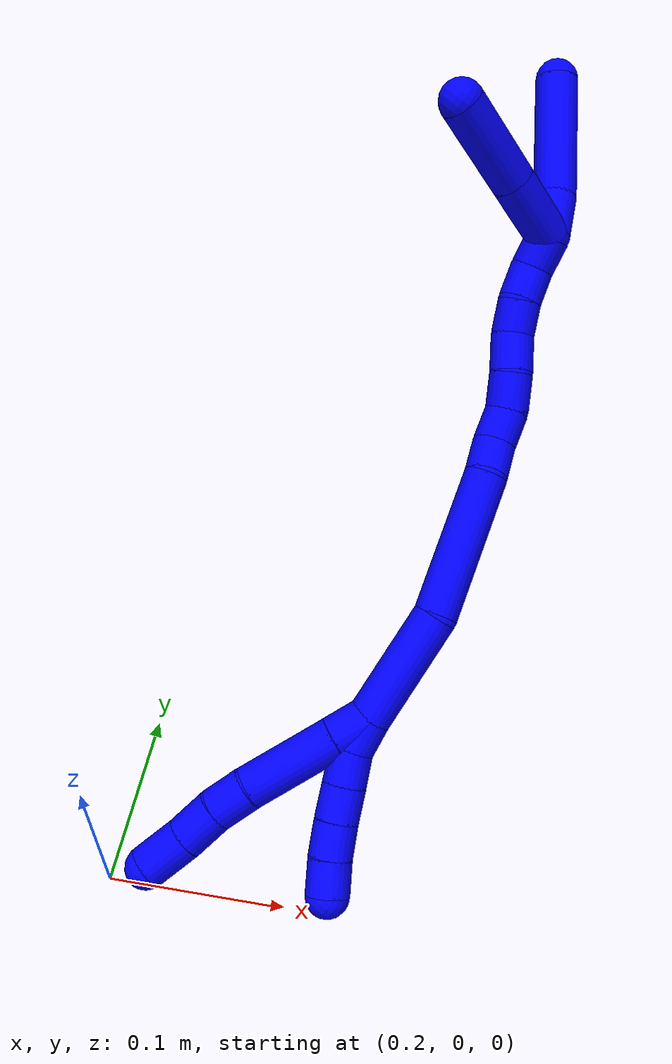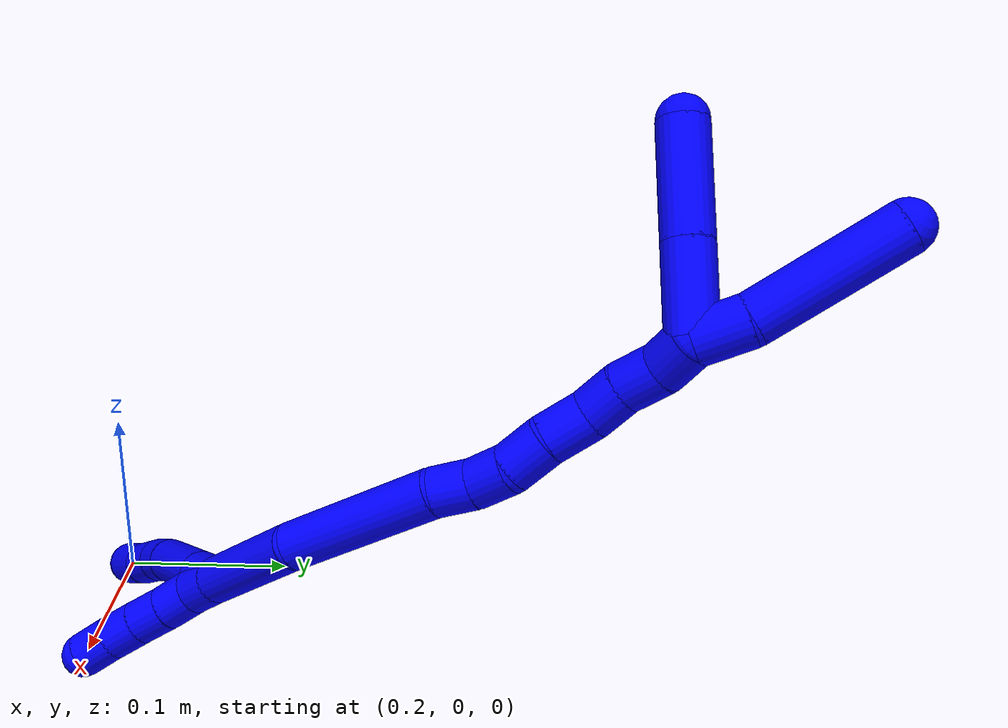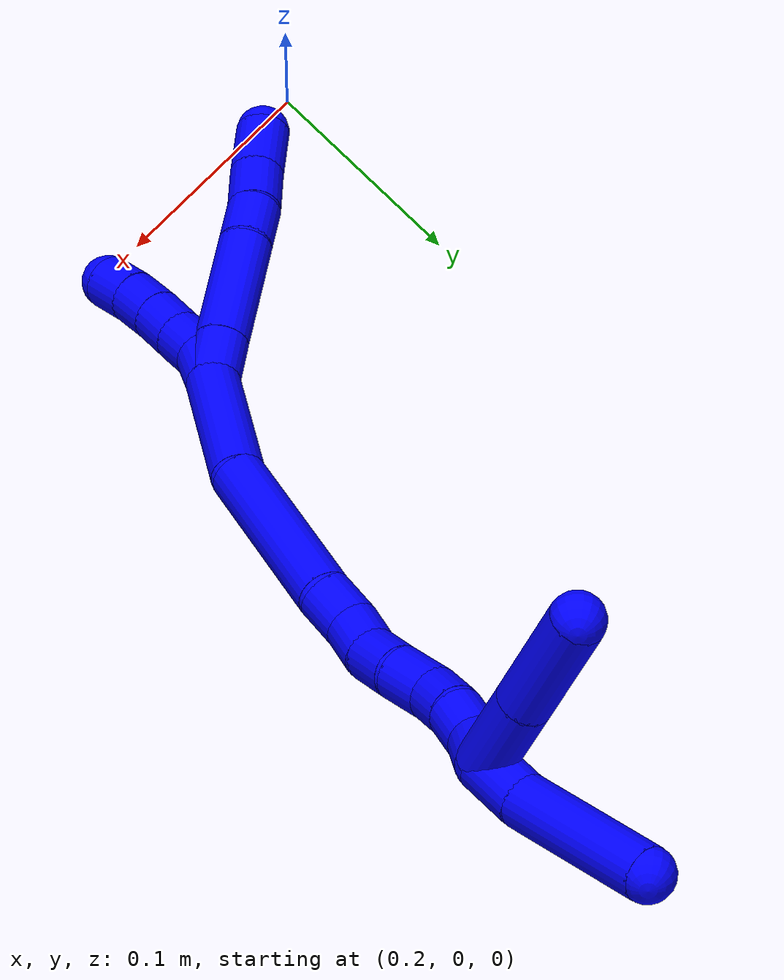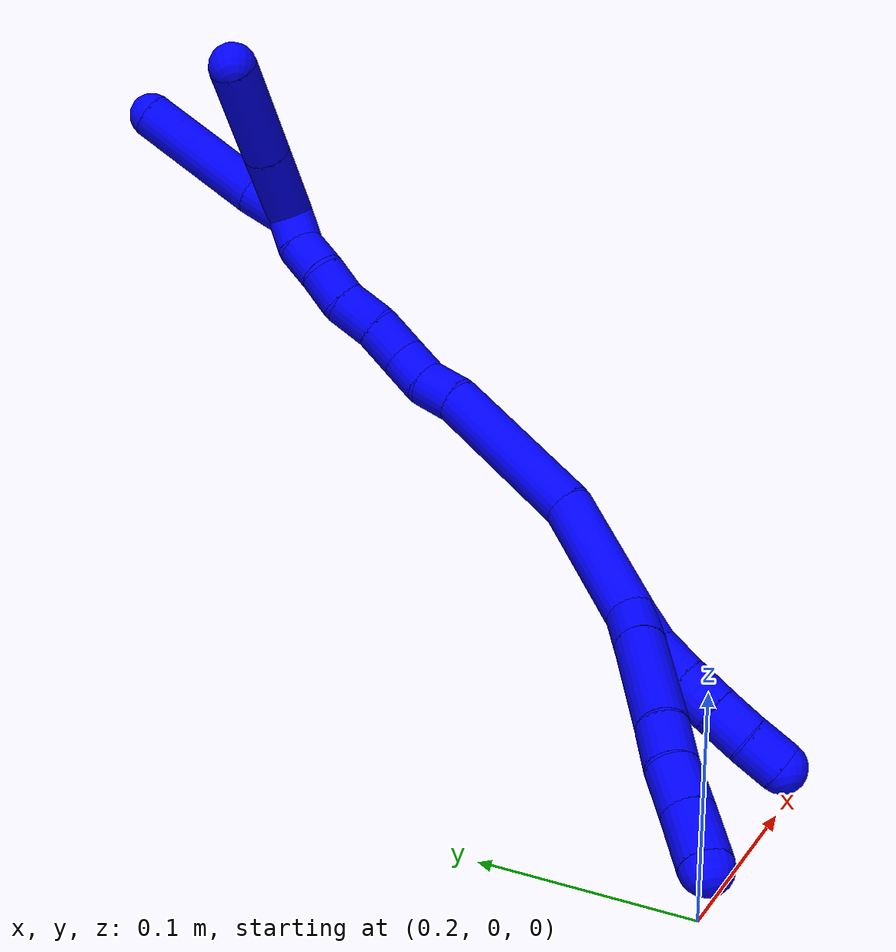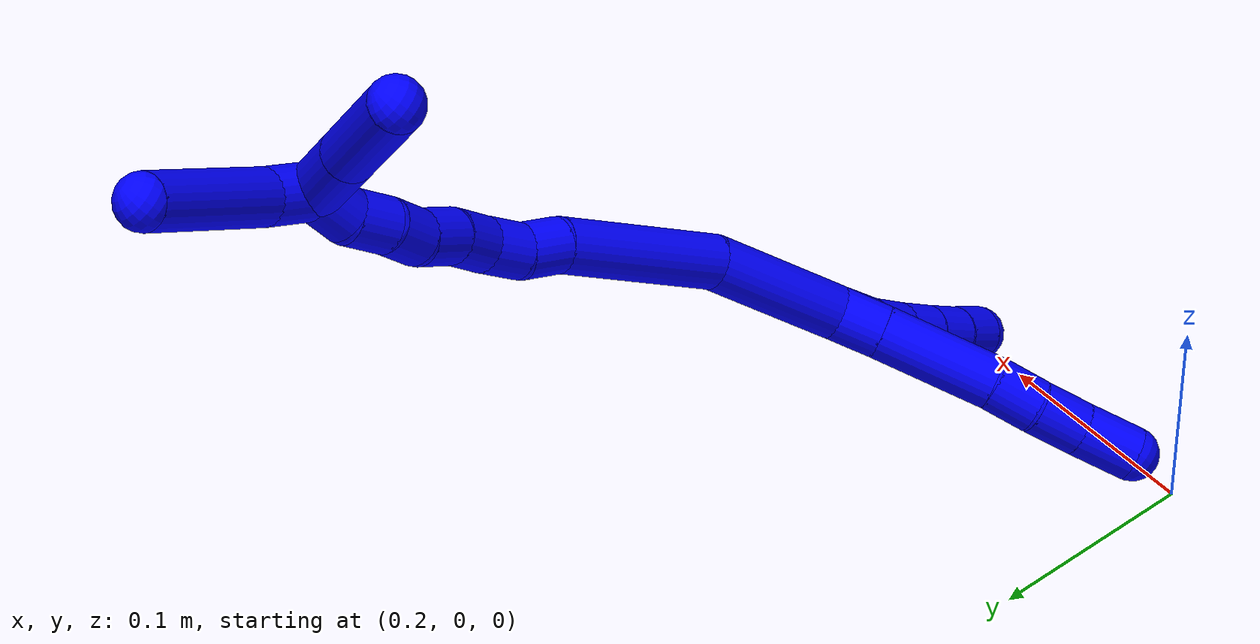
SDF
<sdf version="1.7">
 <world name="default">
  <model name="1">
   <static>0</static>
   <link name="1">
    <collision name="collision-cylinder-e_1_2_8">
     <pose>-0.005213 -0.000842 -0.009881 3.05662 -0.48401 -2.8005</pose>
     <geometry><cylinder><radius>0.0125</radius><length>0.022407</length></cylinder></geometry>
     <surface>
      <friction><ode><mu>1.16</mu><mu2>1.16</mu2><slip1>0</slip1><slip2>0</slip2></ode></friction>
      <contact><ode><kp>1e+06</kp><kd>1</kd><max_vel>0</max_vel><min_depth>0.001</min_depth></ode></contact>
     </surface>
    </collision>
    <visual name="visual-cylinder-e_1_2_8">
     <pose>-0.005213 -0.000842 -0.009881 3.05662 -0.48401 -2.8005</pose>
     <geometry><cylinder><radius>0.0125</radius><length>0.022407</length></cylinder></geometry>
     <material><ambient>0 0 1 1</ambient></material>
    </visual>
    <collision name="collision-cylinder-e_2_8_9">
     <pose>-0.02298 -0.003148 -0.044128 3.08154 -0.474985 -2.8947</pose>
     <geometry><cylinder><radius>0.0125</radius><length>0.054897</length></cylinder></geometry>
     <surface>
      <friction><ode><mu>1.16</mu><mu2>1.16</mu2><slip1>0</slip1><slip2>0</slip2></ode></friction>
      <contact><ode><kp>1e+06</kp><kd>1</kd><max_vel>0</max_vel><min_depth>0.001</min_depth></ode></contact>
     </surface>
    </collision>
    <visual name="visual-cylinder-e_2_8_9">
     <pose>-0.02298 -0.003148 -0.044128 3.08154 -0.474985 -2.8947</pose>
     <geometry><cylinder><radius>0.0125</radius><length>0.054897</length></cylinder></geometry>
     <material><ambient>0 0 1 1</ambient></material>
    </visual>
    <collision name="collision-cylinder-e_3_9_10">
     <pose>-0.039474 -0.004809 -0.07886 3.12269 -0.363309 -3.03876</pose>
     <geometry><cylinder><radius>0.0125</radius><length>0.022184</length></cylinder></geometry>
     <surface>
      <friction><ode><mu>1.16</mu><mu2>1.16</mu2><slip1>0</slip1><slip2>0</slip2></ode></friction>
      <contact><ode><kp>1e+06</kp><kd>1</kd><max_vel>0</max_vel><min_depth>0.001</min_depth></ode></contact>
     </surface>
    </collision>
    <visual name="visual-cylinder-e_3_9_10">
     <pose>-0.039474 -0.004809 -0.07886 3.12269 -0.363309 -3.03876</pose>
     <geometry><cylinder><radius>0.0125</radius><length>0.022184</length></cylinder></geometry>
     <material><ambient>0 0 1 1</ambient></material>
    </visual>
    <collision name="collision-cylinder-e_4_10_11">
     <pose>-0.046265 -0.006185 -0.100529 3.03763 -0.245665 -2.34387</pose>
     <geometry><cylinder><radius>0.0125</radius><length>0.023432</length></cylinder></geometry>
     <surface>
      <friction><ode><mu>1.16</mu><mu2>1.16</mu2><slip1>0</slip1><slip2>0</slip2></ode></friction>
      <contact><ode><kp>1e+06</kp><kd>1</kd><max_vel>0</max_vel><min_depth>0.001</min_depth></ode></contact>
     </surface>
    </collision>
    <visual name="visual-cylinder-e_4_10_11">
     <pose>-0.046265 -0.006185 -0.100529 3.03763 -0.245665 -2.34387</pose>
     <geometry><cylinder><radius>0.0125</radius><length>0.023432</length></cylinder></geometry>
     <material><ambient>0 0 1 1</ambient></material>
    </visual>
    <collision name="collision-cylinder-e_5_11_6">
     <pose>-0.053592 -0.008593 -0.124551 3.04527 -0.336987 -2.58936</pose>
     <geometry><cylinder><radius>0.0125</radius><length>0.027079</length></cylinder></geometry>
     <surface>
      <friction><ode><mu>1.16</mu><mu2>1.16</mu2><slip1>0</slip1><slip2>0</slip2></ode></friction>
      <contact><ode><kp>1e+06</kp><kd>1</kd><max_vel>0</max_vel><min_depth>0.001</min_depth></ode></contact>
     </surface>
    </collision>
    <visual name="visual-cylinder-e_5_11_6">
     <pose>-0.053592 -0.008593 -0.124551 3.04527 -0.336987 -2.58936</pose>
     <geometry><cylinder><radius>0.0125</radius><length>0.027079</length></cylinder></geometry>
     <material><ambient>0 0 1 1</ambient></material>
    </visual>
    <collision name="collision-cylinder-e_1_2_12">
     <pose>0.000221 -0.002928 -0.009559 2.84435 0.022059 0.147069</pose>
     <geometry><cylinder><radius>0.0125</radius><length>0.02</length></cylinder></geometry>
     <surface>
      <friction><ode><mu>1.16</mu><mu2>1.16</mu2><slip1>0</slip1><slip2>0</slip2></ode></friction>
      <contact><ode><kp>1e+06</kp><kd>1</kd><max_vel>0</max_vel><min_depth>0.001</min_depth></ode></contact>
     </surface>
    </collision>
    <visual name="visual-cylinder-e_1_2_12">
     <pose>0.000221 -0.002928 -0.009559 2.84435 0.022059 0.147069</pose>
     <geometry><cylinder><radius>0.0125</radius><length>0.02</length></cylinder></geometry>
     <material><ambient>0 0 1 1</ambient></material>
    </visual>
    <collision name="collision-cylinder-e_2_12_13">
     <pose>0.002879 -0.010596 -0.02758 2.63101 0.246294 0.885682</pose>
     <geometry><cylinder><radius>0.0125</radius><length>0.02</length></cylinder></geometry>
     <surface>
      <friction><ode><mu>1.16</mu><mu2>1.16</mu2><slip1>0</slip1><slip2>0</slip2></ode></friction>
      <contact><ode><kp>1e+06</kp><kd>1</kd><max_vel>0</max_vel><min_depth>0.001</min_depth></ode></contact>
     </surface>
    </collision>
    <visual name="visual-cylinder-e_2_12_13">
     <pose>0.002879 -0.010596 -0.02758 2.63101 0.246294 0.885682</pose>
     <geometry><cylinder><radius>0.0125</radius><length>0.02</length></cylinder></geometry>
     <material><ambient>0 0 1 1</ambient></material>
    </visual>
    <collision name="collision-cylinder-e_3_13_14">
     <pose>0.007412 -0.020397 -0.044407 2.59742 0.211054 0.725651</pose>
     <geometry><cylinder><radius>0.0125</radius><length>0.02</length></cylinder></geometry>
     <surface>
      <friction><ode><mu>1.16</mu><mu2>1.16</mu2><slip1>0</slip1><slip2>0</slip2></ode></friction>
      <contact><ode><kp>1e+06</kp><kd>1</kd><max_vel>0</max_vel><min_depth>0.001</min_depth></ode></contact>
     </surface>
    </collision>
    <visual name="visual-cylinder-e_3_13_14">
     <pose>0.007412 -0.020397 -0.044407 2.59742 0.211054 0.725651</pose>
     <geometry><cylinder><radius>0.0125</radius><length>0.02</length></cylinder></geometry>
     <material><ambient>0 0 1 1</ambient></material>
    </visual>
    <collision name="collision-cylinder-e_4_14_15">
     <pose>0.012019 -0.030718 -0.060899 2.56722 0.253899 0.815828</pose>
     <geometry><cylinder><radius>0.0125</radius><length>0.02</length></cylinder></geometry>
     <surface>
      <friction><ode><mu>1.16</mu><mu2>1.16</mu2><slip1>0</slip1><slip2>0</slip2></ode></friction>
      <contact><ode><kp>1e+06</kp><kd>1</kd><max_vel>0</max_vel><min_depth>0.001</min_depth></ode></contact>
     </surface>
    </collision>
    <visual name="visual-cylinder-e_4_14_15">
     <pose>0.012019 -0.030718 -0.060899 2.56722 0.253899 0.815828</pose>
     <geometry><cylinder><radius>0.0125</radius><length>0.02</length></cylinder></geometry>
     <material><ambient>0 0 1 1</ambient></material>
    </visual>
    <collision name="collision-cylinder-e_5_15_5">
     <pose>0.017807 -0.041547 -0.076657 2.51114 0.333795 0.95368</pose>
     <geometry><cylinder><radius>0.0125</radius><length>0.02</length></cylinder></geometry>
     <surface>
      <friction><ode><mu>1.16</mu><mu2>1.16</mu2><slip1>0</slip1><slip2>0</slip2></ode></friction>
      <contact><ode><kp>1e+06</kp><kd>1</kd><max_vel>0</max_vel><min_depth>0.001</min_depth></ode></contact>
     </surface>
    </collision>
    <visual name="visual-cylinder-e_5_15_5">
     <pose>0.017807 -0.041547 -0.076657 2.51114 0.333795 0.95368</pose>
     <geometry><cylinder><radius>0.0125</radius><length>0.02</length></cylinder></geometry>
     <material><ambient>0 0 1 1</ambient></material>
    </visual>
    <collision name="collision-cylinder-e_1_2_16">
     <pose>0.001345 0.008474 0.03283 -0.252589 0.039649 -0.005035</pose>
     <geometry><cylinder><radius>0.0125</radius><length>0.067866</length></cylinder></geometry>
     <surface>
      <friction><ode><mu>1.16</mu><mu2>1.16</mu2><slip1>0</slip1><slip2>0</slip2></ode></friction>
      <contact><ode><kp>1e+06</kp><kd>1</kd><max_vel>0</max_vel><min_depth>0.001</min_depth></ode></contact>
     </surface>
    </collision>
    <visual name="visual-cylinder-e_1_2_16">
     <pose>0.001345 0.008474 0.03283 -0.252589 0.039649 -0.005035</pose>
     <geometry><cylinder><radius>0.0125</radius><length>0.067866</length></cylinder></geometry>
     <material><ambient>0 0 1 1</ambient></material>
    </visual>
    <collision name="collision-cylinder-e_2_16_17">
     <pose>-0.000126 0.037956 0.10259 -0.517245 -0.066179 0.017514</pose>
     <geometry><cylinder><radius>0.0125</radius><length>0.085161</length></cylinder></geometry>
     <surface>
      <friction><ode><mu>1.16</mu><mu2>1.16</mu2><slip1>0</slip1><slip2>0</slip2></ode></friction>
      <contact><ode><kp>1e+06</kp><kd>1</kd><max_vel>0</max_vel><min_depth>0.001</min_depth></ode></contact>
     </surface>
    </collision>
    <visual name="visual-cylinder-e_2_16_17">
     <pose>-0.000126 0.037956 0.10259 -0.517245 -0.066179 0.017514</pose>
     <geometry><cylinder><radius>0.0125</radius><length>0.085161</length></cylinder></geometry>
     <material><ambient>0 0 1 1</ambient></material>
    </visual>
    <collision name="collision-cylinder-e_3_17_18">
     <pose>-0.003155 0.065883 0.147116 -0.73862 -0.020778 0.008043</pose>
     <geometry><cylinder><radius>0.0125</radius><length>0.020553</length></cylinder></geometry>
     <surface>
      <friction><ode><mu>1.16</mu><mu2>1.16</mu2><slip1>0</slip1><slip2>0</slip2></ode></friction>
      <contact><ode><kp>1e+06</kp><kd>1</kd><max_vel>0</max_vel><min_depth>0.001</min_depth></ode></contact>
     </surface>
    </collision>
    <visual name="visual-cylinder-e_3_17_18">
     <pose>-0.003155 0.065883 0.147116 -0.73862 -0.020778 0.008043</pose>
     <geometry><cylinder><radius>0.0125</radius><length>0.020553</length></cylinder></geometry>
     <material><ambient>0 0 1 1</ambient></material>
    </visual>
    <collision name="collision-cylinder-e_4_18_19">
     <pose>-0.004203 0.077256 0.163874 -0.452665 -0.08175 0.018835</pose>
     <geometry><cylinder><radius>0.0125</radius><length>0.020442</length></cylinder></geometry>
     <surface>
      <friction><ode><mu>1.16</mu><mu2>1.16</mu2><slip1>0</slip1><slip2>0</slip2></ode></friction>
      <contact><ode><kp>1e+06</kp><kd>1</kd><max_vel>0</max_vel><min_depth>0.001</min_depth></ode></contact>
     </surface>
    </collision>
    <visual name="visual-cylinder-e_4_18_19">
     <pose>-0.004203 0.077256 0.163874 -0.452665 -0.08175 0.018835</pose>
     <geometry><cylinder><radius>0.0125</radius><length>0.020442</length></cylinder></geometry>
     <material><ambient>0 0 1 1</ambient></material>
    </visual>
    <collision name="collision-cylinder-e_5_19_20">
     <pose>-0.009028 0.086333 0.182195 -0.467219 -0.370908 0.089226</pose>
     <geometry><cylinder><radius>0.0125</radius><length>0.022017</length></cylinder></geometry>
     <surface>
      <friction><ode><mu>1.16</mu><mu2>1.16</mu2><slip1>0</slip1><slip2>0</slip2></ode></friction>
      <contact><ode><kp>1e+06</kp><kd>1</kd><max_vel>0</max_vel><min_depth>0.001</min_depth></ode></contact>
     </surface>
    </collision>
    <visual name="visual-cylinder-e_5_19_20">
     <pose>-0.009028 0.086333 0.182195 -0.467219 -0.370908 0.089226</pose>
     <geometry><cylinder><radius>0.0125</radius><length>0.022017</length></cylinder></geometry>
     <material><ambient>0 0 1 1</ambient></material>
    </visual>
    <collision name="collision-cylinder-e_6_20_21">
     <pose>-0.016778 0.097583 0.199892 -0.660268 -0.334773 0.115673</pose>
     <geometry><cylinder><radius>0.0125</radius><length>0.022887</length></cylinder></geometry>
     <surface>
      <friction><ode><mu>1.16</mu><mu2>1.16</mu2><slip1>0</slip1><slip2>0</slip2></ode></friction>
      <contact><ode><kp>1e+06</kp><kd>1</kd><max_vel>0</max_vel><min_depth>0.001</min_depth></ode></contact>
     </surface>
    </collision>
    <visual name="visual-cylinder-e_6_20_21">
     <pose>-0.016778 0.097583 0.199892 -0.660268 -0.334773 0.115673</pose>
     <geometry><cylinder><radius>0.0125</radius><length>0.022887</length></cylinder></geometry>
     <material><ambient>0 0 1 1</ambient></material>
    </visual>
    <collision name="collision-cylinder-e_7_21_22">
     <pose>-0.02377 0.107622 0.217299 -0.367027 -0.327789 0.06137</pose>
     <geometry><cylinder><radius>0.0125</radius><length>0.020076</length></cylinder></geometry>
     <surface>
      <friction><ode><mu>1.16</mu><mu2>1.16</mu2><slip1>0</slip1><slip2>0</slip2></ode></friction>
      <contact><ode><kp>1e+06</kp><kd>1</kd><max_vel>0</max_vel><min_depth>0.001</min_depth></ode></contact>
     </surface>
    </collision>
    <visual name="visual-cylinder-e_7_21_22">
     <pose>-0.02377 0.107622 0.217299 -0.367027 -0.327789 0.06137</pose>
     <geometry><cylinder><radius>0.0125</radius><length>0.020076</length></cylinder></geometry>
     <material><ambient>0 0 1 1</ambient></material>
    </visual>
    <collision name="collision-cylinder-e_8_22_23">
     <pose>-0.028175 0.115239 0.235513 -0.423088 -0.11405 0.024518</pose>
     <geometry><cylinder><radius>0.0125</radius><length>0.020626</length></cylinder></geometry>
     <surface>
      <friction><ode><mu>1.16</mu><mu2>1.16</mu2><slip1>0</slip1><slip2>0</slip2></ode></friction>
      <contact><ode><kp>1e+06</kp><kd>1</kd><max_vel>0</max_vel><min_depth>0.001</min_depth></ode></contact>
     </surface>
    </collision>
    <visual name="visual-cylinder-e_8_22_23">
     <pose>-0.028175 0.115239 0.235513 -0.423088 -0.11405 0.024518</pose>
     <geometry><cylinder><radius>0.0125</radius><length>0.020626</length></cylinder></geometry>
     <material><ambient>0 0 1 1</ambient></material>
    </visual>
    <collision name="collision-cylinder-e_9_23_1">
     <pose>-0.031057 0.120282 0.254862 -0.083344 -0.16848 0.007042</pose>
     <geometry><cylinder><radius>0.0125</radius><length>0.020371</length></cylinder></geometry>
     <surface>
      <friction><ode><mu>1.16</mu><mu2>1.16</mu2><slip1>0</slip1><slip2>0</slip2></ode></friction>
      <contact><ode><kp>1e+06</kp><kd>1</kd><max_vel>0</max_vel><min_depth>0.001</min_depth></ode></contact>
     </surface>
    </collision>
    <visual name="visual-cylinder-e_9_23_1">
     <pose>-0.031057 0.120282 0.254862 -0.083344 -0.16848 0.007042</pose>
     <geometry><cylinder><radius>0.0125</radius><length>0.020371</length></cylinder></geometry>
     <material><ambient>0 0 1 1</ambient></material>
    </visual>
    <collision name="collision-cylinder-e_1_1_24">
     <pose>-0.034449 0.129574 0.274659 -0.712381 -0.129423 0.048211</pose>
     <geometry><cylinder><radius>0.0125</radius><length>0.026092</length></cylinder></geometry>
     <surface>
      <friction><ode><mu>1.16</mu><mu2>1.16</mu2><slip1>0</slip1><slip2>0</slip2></ode></friction>
      <contact><ode><kp>1e+06</kp><kd>1</kd><max_vel>0</max_vel><min_depth>0.001</min_depth></ode></contact>
     </surface>
    </collision>
    <visual name="visual-cylinder-e_1_1_24">
     <pose>-0.034449 0.129574 0.274659 -0.712381 -0.129423 0.048211</pose>
     <geometry><cylinder><radius>0.0125</radius><length>0.026092</length></cylinder></geometry>
     <material><ambient>0 0 1 1</ambient></material>
    </visual>
    <collision name="collision-cylinder-e_2_24_4">
     <pose>-0.048687 0.159548 0.311744 -0.667618 -0.346641 0.12128</pose>
     <geometry><cylinder><radius>0.0125</radius><length>0.073908</length></cylinder></geometry>
     <surface>
      <friction><ode><mu>1.16</mu><mu2>1.16</mu2><slip1>0</slip1><slip2>0</slip2></ode></friction>
      <contact><ode><kp>1e+06</kp><kd>1</kd><max_vel>0</max_vel><min_depth>0.001</min_depth></ode></contact>
     </surface>
    </collision>
    <visual name="visual-cylinder-e_2_24_4">
     <pose>-0.048687 0.159548 0.311744 -0.667618 -0.346641 0.12128</pose>
     <geometry><cylinder><radius>0.0125</radius><length>0.073908</length></cylinder></geometry>
     <material><ambient>0 0 1 1</ambient></material>
    </visual>
    <collision name="collision-cylinder-e_1_1_25">
     <pose>-0.053697 0.118833 0.271018 0.355718 -1.26712 -0.262575</pose>
     <geometry><cylinder><radius>0.0125</radius><length>0.043872</length></cylinder></geometry>
     <surface>
      <friction><ode><mu>1.16</mu><mu2>1.16</mu2><slip1>0</slip1><slip2>0</slip2></ode></friction>
      <contact><ode><kp>1e+06</kp><kd>1</kd><max_vel>0</max_vel><min_depth>0.001</min_depth></ode></contact>
     </surface>
    </collision>
    <visual name="visual-cylinder-e_1_1_25">
     <pose>-0.053697 0.118833 0.271018 0.355718 -1.26712 -0.262575</pose>
     <geometry><cylinder><radius>0.0125</radius><length>0.043872</length></cylinder></geometry>
     <material><ambient>0 0 1 1</ambient></material>
    </visual>
    <collision name="collision-cylinder-e_2_25_3">
     <pose>-0.10141 0.113601 0.285023 0.358916 -1.26714 -0.264965</pose>
     <geometry><cylinder><radius>0.0125</radius><length>0.056128</length></cylinder></geometry>
     <surface>
      <friction><ode><mu>1.16</mu><mu2>1.16</mu2><slip1>0</slip1><slip2>0</slip2></ode></friction>
      <contact><ode><kp>1e+06</kp><kd>1</kd><max_vel>0</max_vel><min_depth>0.001</min_depth></ode></contact>
     </surface>
    </collision>
    <visual name="visual-cylinder-e_2_25_3">
     <pose>-0.10141 0.113601 0.285023 0.358916 -1.26714 -0.264965</pose>
     <geometry><cylinder><radius>0.0125</radius><length>0.056128</length></cylinder></geometry>
     <material><ambient>0 0 1 1</ambient></material>
    </visual>
    <collision name="collision-sphere-3">
     <pose>-0.12819 0.110654 0.29288 0 -0 0</pose>
     <geometry><sphere><radius>0.0125</radius></sphere></geometry>
     <surface>
      <friction><ode><mu>1.16</mu><mu2>1.16</mu2><slip1>0</slip1><slip2>0</slip2></ode></friction>
      <contact><ode><kp>1e+06</kp><kd>1</kd><max_vel>0</max_vel><min_depth>0.001</min_depth></ode></contact>
     </surface>
    </collision>
    <visual name="visual-sphere-3">
     <pose>-0.12819 0.110654 0.29288 0 -0 0</pose>
     <geometry><sphere><radius>0.0125</radius></sphere></geometry>
     <material><ambient>0 0 1 1</ambient></material>
    </visual>
    <collision name="collision-sphere-25">
     <pose>-0.07463 0.116549 0.277167 0 -0 0</pose>
     <geometry><sphere><radius>0.0125</radius></sphere></geometry>
     <surface>
      <friction><ode><mu>1.16</mu><mu2>1.16</mu2><slip1>0</slip1><slip2>0</slip2></ode></friction>
      <contact><ode><kp>1e+06</kp><kd>1</kd><max_vel>0</max_vel><min_depth>0.001</min_depth></ode></contact>
     </surface>
    </collision>
    <visual name="visual-sphere-25">
     <pose>-0.07463 0.116549 0.277167 0 -0 0</pose>
     <geometry><sphere><radius>0.0125</radius></sphere></geometry>
     <material><ambient>0 0 1 1</ambient></material>
    </visual>
    <collision name="collision-sphere-4">
     <pose>-0.061242 0.181066 0.339038 0 -0 0</pose>
     <geometry><sphere><radius>0.0125</radius></sphere></geometry>
     <surface>
      <friction><ode><mu>1.16</mu><mu2>1.16</mu2><slip1>0</slip1><slip2>0</slip2></ode></friction>
      <contact><ode><kp>1e+06</kp><kd>1</kd><max_vel>0</max_vel><min_depth>0.001</min_depth></ode></contact>
     </surface>
    </collision>
    <visual name="visual-sphere-4">
     <pose>-0.061242 0.181066 0.339038 0 -0 0</pose>
     <geometry><sphere><radius>0.0125</radius></sphere></geometry>
     <material><ambient>0 0 1 1</ambient></material>
    </visual>
    <collision name="collision-sphere-24">
     <pose>-0.036132 0.13803 0.28445 0 -0 0</pose>
     <geometry><sphere><radius>0.0125</radius></sphere></geometry>
     <surface>
      <friction><ode><mu>1.16</mu><mu2>1.16</mu2><slip1>0</slip1><slip2>0</slip2></ode></friction>
      <contact><ode><kp>1e+06</kp><kd>1</kd><max_vel>0</max_vel><min_depth>0.001</min_depth></ode></contact>
     </surface>
    </collision>
    <visual name="visual-sphere-24">
     <pose>-0.036132 0.13803 0.28445 0 -0 0</pose>
     <geometry><sphere><radius>0.0125</radius></sphere></geometry>
     <material><ambient>0 0 1 1</ambient></material>
    </visual>
    <collision name="collision-sphere-1">
     <pose>-0.032765 0.121118 0.264869 0 -0 0</pose>
     <geometry><sphere><radius>0.0125</radius></sphere></geometry>
     <surface>
      <friction><ode><mu>1.16</mu><mu2>1.16</mu2><slip1>0</slip1><slip2>0</slip2></ode></friction>
      <contact><ode><kp>1e+06</kp><kd>1</kd><max_vel>0</max_vel><min_depth>0.001</min_depth></ode></contact>
     </surface>
    </collision>
    <visual name="visual-sphere-1">
     <pose>-0.032765 0.121118 0.264869 0 -0 0</pose>
     <geometry><sphere><radius>0.0125</radius></sphere></geometry>
     <material><ambient>0 0 1 1</ambient></material>
    </visual>
    <collision name="collision-sphere-23">
     <pose>-0.029349 0.119446 0.244855 0 -0 0</pose>
     <geometry><sphere><radius>0.0125</radius></sphere></geometry>
     <surface>
      <friction><ode><mu>1.16</mu><mu2>1.16</mu2><slip1>0</slip1><slip2>0</slip2></ode></friction>
      <contact><ode><kp>1e+06</kp><kd>1</kd><max_vel>0</max_vel><min_depth>0.001</min_depth></ode></contact>
     </surface>
    </collision>
    <visual name="visual-sphere-23">
     <pose>-0.029349 0.119446 0.244855 0 -0 0</pose>
     <geometry><sphere><radius>0.0125</radius></sphere></geometry>
     <material><ambient>0 0 1 1</ambient></material>
    </visual>
    <collision name="collision-sphere-22">
     <pose>-0.027001 0.111032 0.22617 0 -0 0</pose>
     <geometry><sphere><radius>0.0125</radius></sphere></geometry>
     <surface>
      <friction><ode><mu>1.16</mu><mu2>1.16</mu2><slip1>0</slip1><slip2>0</slip2></ode></friction>
      <contact><ode><kp>1e+06</kp><kd>1</kd><max_vel>0</max_vel><min_depth>0.001</min_depth></ode></contact>
     </surface>
    </collision>
    <visual name="visual-sphere-22">
     <pose>-0.027001 0.111032 0.22617 0 -0 0</pose>
     <geometry><sphere><radius>0.0125</radius></sphere></geometry>
     <material><ambient>0 0 1 1</ambient></material>
    </visual>
    <collision name="collision-sphere-21">
     <pose>-0.020538 0.104212 0.208429 0 -0 0</pose>
     <geometry><sphere><radius>0.0125</radius></sphere></geometry>
     <surface>
      <friction><ode><mu>1.16</mu><mu2>1.16</mu2><slip1>0</slip1><slip2>0</slip2></ode></friction>
      <contact><ode><kp>1e+06</kp><kd>1</kd><max_vel>0</max_vel><min_depth>0.001</min_depth></ode></contact>
     </surface>
    </collision>
    <visual name="visual-sphere-21">
     <pose>-0.020538 0.104212 0.208429 0 -0 0</pose>
     <geometry><sphere><radius>0.0125</radius></sphere></geometry>
     <material><ambient>0 0 1 1</ambient></material>
    </visual>
    <collision name="collision-sphere-6">
     <pose>-0.058069 -0.009822 -0.13727 0 -0 0</pose>
     <geometry><sphere><radius>0.0125</radius></sphere></geometry>
     <surface>
      <friction><ode><mu>1.16</mu><mu2>1.16</mu2><slip1>0</slip1><slip2>0</slip2></ode></friction>
      <contact><ode><kp>1e+06</kp><kd>1</kd><max_vel>0</max_vel><min_depth>0.001</min_depth></ode></contact>
     </surface>
    </collision>
    <visual name="visual-sphere-6">
     <pose>-0.058069 -0.009822 -0.13727 0 -0 0</pose>
     <geometry><sphere><radius>0.0125</radius></sphere></geometry>
     <material><ambient>0 0 1 1</ambient></material>
    </visual>
    <collision name="collision-sphere-11">
     <pose>-0.049115 -0.007364 -0.111832 0 -0 0</pose>
     <geometry><sphere><radius>0.0125</radius></sphere></geometry>
     <surface>
      <friction><ode><mu>1.16</mu><mu2>1.16</mu2><slip1>0</slip1><slip2>0</slip2></ode></friction>
      <contact><ode><kp>1e+06</kp><kd>1</kd><max_vel>0</max_vel><min_depth>0.001</min_depth></ode></contact>
     </surface>
    </collision>
    <visual name="visual-sphere-11">
     <pose>-0.049115 -0.007364 -0.111832 0 -0 0</pose>
     <geometry><sphere><radius>0.0125</radius></sphere></geometry>
     <material><ambient>0 0 1 1</ambient></material>
    </visual>
    <collision name="collision-sphere-10">
     <pose>-0.043416 -0.005005 -0.089226 0 -0 0</pose>
     <geometry><sphere><radius>0.0125</radius></sphere></geometry>
     <surface>
      <friction><ode><mu>1.16</mu><mu2>1.16</mu2><slip1>0</slip1><slip2>0</slip2></ode></friction>
      <contact><ode><kp>1e+06</kp><kd>1</kd><max_vel>0</max_vel><min_depth>0.001</min_depth></ode></contact>
     </surface>
    </collision>
    <visual name="visual-sphere-10">
     <pose>-0.043416 -0.005005 -0.089226 0 -0 0</pose>
     <geometry><sphere><radius>0.0125</radius></sphere></geometry>
     <material><ambient>0 0 1 1</ambient></material>
    </visual>
    <collision name="collision-sphere-9">
     <pose>-0.035533 -0.004613 -0.068494 0 -0 0</pose>
     <geometry><sphere><radius>0.0125</radius></sphere></geometry>
     <surface>
      <friction><ode><mu>1.16</mu><mu2>1.16</mu2><slip1>0</slip1><slip2>0</slip2></ode></friction>
      <contact><ode><kp>1e+06</kp><kd>1</kd><max_vel>0</max_vel><min_depth>0.001</min_depth></ode></contact>
     </surface>
    </collision>
    <visual name="visual-sphere-9">
     <pose>-0.035533 -0.004613 -0.068494 0 -0 0</pose>
     <geometry><sphere><radius>0.0125</radius></sphere></geometry>
     <material><ambient>0 0 1 1</ambient></material>
    </visual>
    <collision name="collision-sphere-2">
     <geometry><sphere><radius>0.0125</radius></sphere></geometry>
     <surface>
      <friction><ode><mu>1.16</mu><mu2>1.16</mu2><slip1>0</slip1><slip2>0</slip2></ode></friction>
      <contact><ode><kp>1e+06</kp><kd>1</kd><max_vel>0</max_vel><min_depth>0.001</min_depth></ode></contact>
     </surface>
    </collision>
    <visual name="visual-sphere-2">
     <geometry><sphere><radius>0.0125</radius></sphere></geometry>
     <material><ambient>0 0 1 1</ambient></material>
    </visual>
    <collision name="collision-sphere-19">
     <pose>-0.005038 0.081712 0.173035 0 -0 0</pose>
     <geometry><sphere><radius>0.0125</radius></sphere></geometry>
     <surface>
      <friction><ode><mu>1.16</mu><mu2>1.16</mu2><slip1>0</slip1><slip2>0</slip2></ode></friction>
      <contact><ode><kp>1e+06</kp><kd>1</kd><max_vel>0</max_vel><min_depth>0.001</min_depth></ode></contact>
     </surface>
    </collision>
    <visual name="visual-sphere-19">
     <pose>-0.005038 0.081712 0.173035 0 -0 0</pose>
     <geometry><sphere><radius>0.0125</radius></sphere></geometry>
     <material><ambient>0 0 1 1</ambient></material>
    </visual>
    <collision name="collision-sphere-8">
     <pose>-0.010427 -0.001683 -0.019762 0 -0 0</pose>
     <geometry><sphere><radius>0.0125</radius></sphere></geometry>
     <surface>
      <friction><ode><mu>1.16</mu><mu2>1.16</mu2><slip1>0</slip1><slip2>0</slip2></ode></friction>
      <contact><ode><kp>1e+06</kp><kd>1</kd><max_vel>0</max_vel><min_depth>0.001</min_depth></ode></contact>
     </surface>
    </collision>
    <visual name="visual-sphere-8">
     <pose>-0.010427 -0.001683 -0.019762 0 -0 0</pose>
     <geometry><sphere><radius>0.0125</radius></sphere></geometry>
     <material><ambient>0 0 1 1</ambient></material>
    </visual>
    <collision name="collision-sphere-12">
     <pose>0.000441 -0.005856 -0.019118 0 -0 0</pose>
     <geometry><sphere><radius>0.0125</radius></sphere></geometry>
     <surface>
      <friction><ode><mu>1.16</mu><mu2>1.16</mu2><slip1>0</slip1><slip2>0</slip2></ode></friction>
      <contact><ode><kp>1e+06</kp><kd>1</kd><max_vel>0</max_vel><min_depth>0.001</min_depth></ode></contact>
     </surface>
    </collision>
    <visual name="visual-sphere-12">
     <pose>0.000441 -0.005856 -0.019118 0 -0 0</pose>
     <geometry><sphere><radius>0.0125</radius></sphere></geometry>
     <material><ambient>0 0 1 1</ambient></material>
    </visual>
    <collision name="collision-sphere-13">
     <pose>0.005317 -0.015335 -0.036041 0 -0 0</pose>
     <geometry><sphere><radius>0.0125</radius></sphere></geometry>
     <surface>
      <friction><ode><mu>1.16</mu><mu2>1.16</mu2><slip1>0</slip1><slip2>0</slip2></ode></friction>
      <contact><ode><kp>1e+06</kp><kd>1</kd><max_vel>0</max_vel><min_depth>0.001</min_depth></ode></contact>
     </surface>
    </collision>
    <visual name="visual-sphere-13">
     <pose>0.005317 -0.015335 -0.036041 0 -0 0</pose>
     <geometry><sphere><radius>0.0125</radius></sphere></geometry>
     <material><ambient>0 0 1 1</ambient></material>
    </visual>
    <collision name="collision-sphere-14">
     <pose>0.009507 -0.025459 -0.052772 0 -0 0</pose>
     <geometry><sphere><radius>0.0125</radius></sphere></geometry>
     <surface>
      <friction><ode><mu>1.16</mu><mu2>1.16</mu2><slip1>0</slip1><slip2>0</slip2></ode></friction>
      <contact><ode><kp>1e+06</kp><kd>1</kd><max_vel>0</max_vel><min_depth>0.001</min_depth></ode></contact>
     </surface>
    </collision>
    <visual name="visual-sphere-14">
     <pose>0.009507 -0.025459 -0.052772 0 -0 0</pose>
     <geometry><sphere><radius>0.0125</radius></sphere></geometry>
     <material><ambient>0 0 1 1</ambient></material>
    </visual>
    <collision name="collision-sphere-15">
     <pose>0.014531 -0.035977 -0.069025 0 -0 0</pose>
     <geometry><sphere><radius>0.0125</radius></sphere></geometry>
     <surface>
      <friction><ode><mu>1.16</mu><mu2>1.16</mu2><slip1>0</slip1><slip2>0</slip2></ode></friction>
      <contact><ode><kp>1e+06</kp><kd>1</kd><max_vel>0</max_vel><min_depth>0.001</min_depth></ode></contact>
     </surface>
    </collision>
    <visual name="visual-sphere-15">
     <pose>0.014531 -0.035977 -0.069025 0 -0 0</pose>
     <geometry><sphere><radius>0.0125</radius></sphere></geometry>
     <material><ambient>0 0 1 1</ambient></material>
    </visual>
    <collision name="collision-sphere-5">
     <pose>0.021083 -0.047117 -0.084288 0 -0 0</pose>
     <geometry><sphere><radius>0.0125</radius></sphere></geometry>
     <surface>
      <friction><ode><mu>1.16</mu><mu2>1.16</mu2><slip1>0</slip1><slip2>0</slip2></ode></friction>
      <contact><ode><kp>1e+06</kp><kd>1</kd><max_vel>0</max_vel><min_depth>0.001</min_depth></ode></contact>
     </surface>
    </collision>
    <visual name="visual-sphere-5">
     <pose>0.021083 -0.047117 -0.084288 0 -0 0</pose>
     <geometry><sphere><radius>0.0125</radius></sphere></geometry>
     <material><ambient>0 0 1 1</ambient></material>
    </visual>
    <collision name="collision-sphere-16">
     <pose>0.00269 0.016947 0.065661 0 -0 0</pose>
     <geometry><sphere><radius>0.0125</radius></sphere></geometry>
     <surface>
      <friction><ode><mu>1.16</mu><mu2>1.16</mu2><slip1>0</slip1><slip2>0</slip2></ode></friction>
      <contact><ode><kp>1e+06</kp><kd>1</kd><max_vel>0</max_vel><min_depth>0.001</min_depth></ode></contact>
     </surface>
    </collision>
    <visual name="visual-sphere-16">
     <pose>0.00269 0.016947 0.065661 0 -0 0</pose>
     <geometry><sphere><radius>0.0125</radius></sphere></geometry>
     <material><ambient>0 0 1 1</ambient></material>
    </visual>
    <collision name="collision-sphere-17">
     <pose>-0.002942 0.058966 0.139519 0 -0 0</pose>
     <geometry><sphere><radius>0.0125</radius></sphere></geometry>
     <surface>
      <friction><ode><mu>1.16</mu><mu2>1.16</mu2><slip1>0</slip1><slip2>0</slip2></ode></friction>
      <contact><ode><kp>1e+06</kp><kd>1</kd><max_vel>0</max_vel><min_depth>0.001</min_depth></ode></contact>
     </surface>
    </collision>
    <visual name="visual-sphere-17">
     <pose>-0.002942 0.058966 0.139519 0 -0 0</pose>
     <geometry><sphere><radius>0.0125</radius></sphere></geometry>
     <material><ambient>0 0 1 1</ambient></material>
    </visual>
    <collision name="collision-sphere-18">
     <pose>-0.003369 0.072801 0.154713 0 -0 0</pose>
     <geometry><sphere><radius>0.0125</radius></sphere></geometry>
     <surface>
      <friction><ode><mu>1.16</mu><mu2>1.16</mu2><slip1>0</slip1><slip2>0</slip2></ode></friction>
      <contact><ode><kp>1e+06</kp><kd>1</kd><max_vel>0</max_vel><min_depth>0.001</min_depth></ode></contact>
     </surface>
    </collision>
    <visual name="visual-sphere-18">
     <pose>-0.003369 0.072801 0.154713 0 -0 0</pose>
     <geometry><sphere><radius>0.0125</radius></sphere></geometry>
     <material><ambient>0 0 1 1</ambient></material>
    </visual>
    <collision name="collision-sphere-20">
     <pose>-0.013018 0.090954 0.191356 0 -0 0</pose>
     <geometry><sphere><radius>0.0125</radius></sphere></geometry>
     <surface>
      <friction><ode><mu>1.16</mu><mu2>1.16</mu2><slip1>0</slip1><slip2>0</slip2></ode></friction>
      <contact><ode><kp>1e+06</kp><kd>1</kd><max_vel>0</max_vel><min_depth>0.001</min_depth></ode></contact>
     </surface>
    </collision>
    <visual name="visual-sphere-20">
     <pose>-0.013018 0.090954 0.191356 0 -0 0</pose>
     <geometry><sphere><radius>0.0125</radius></sphere></geometry>
     <material><ambient>0 0 1 1</ambient></material>
    </visual>
    <inertial>
     <pose>-0.025162 0.055768 0.111904 0 -0 0</pose>
     <mass>0.75</mass>
     <inertia><ixx>0.000109</ixx><ixy>0</ixy><ixz>0</ixz><iyy>0.000171</iyy><iyz>0</iyz><izz>8e-06</izz></inertia>
    </inertial>
   </link>
   <pose>0.333493 0.086063 0.069151 -0.445373 0.679311 0.111959</pose>
  </model>
 </world>
</sdf>
